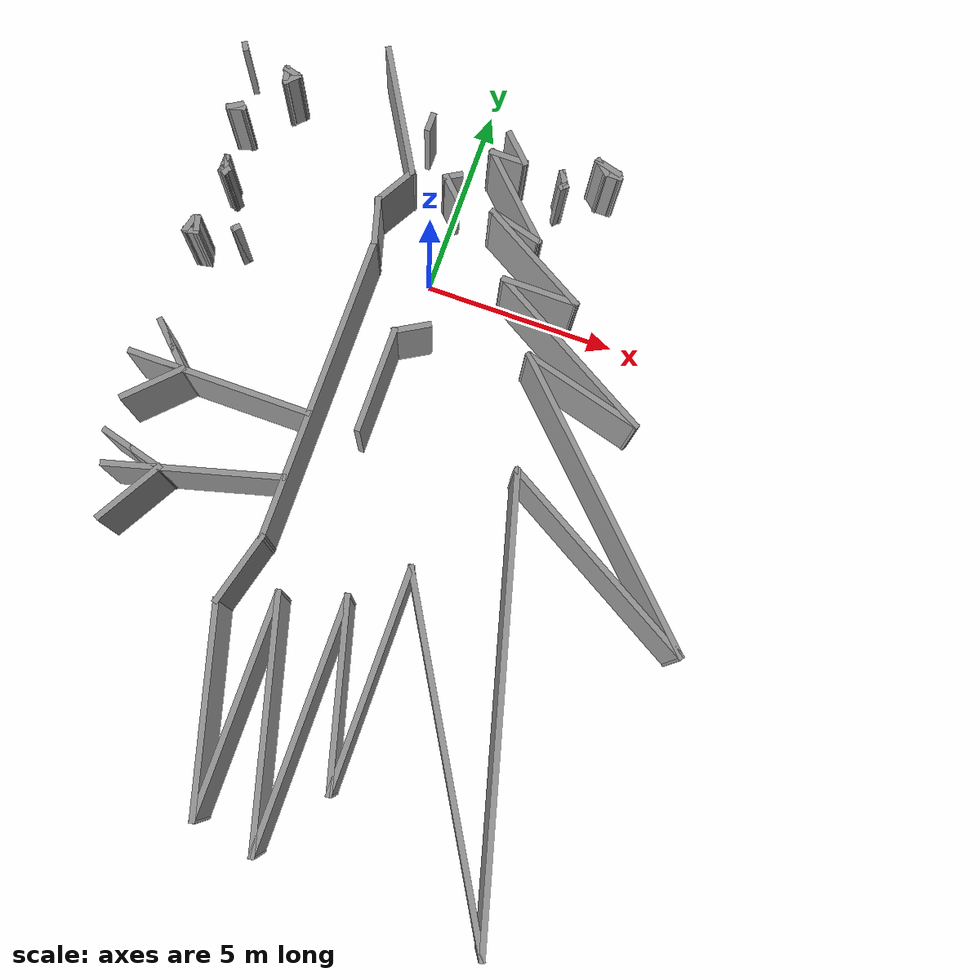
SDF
<sdf version="1.6">
 <model name="phenix">
  <pose>1.26432 -3.5 0 0 -0 4.71</pose>
  <link name="Wall_103">
   <collision name="Wall_103_Collision">
    <geometry><box><size>0.75 0.15 2.5</size></box></geometry>
    <pose>0 0 1.25 0 -0 0</pose>
   </collision>
   <visual name="Wall_103_Visual">
    <pose>0 0 1.25 0 -0 0</pose>
    <geometry><box><size>0.75 0.15 2.5</size></box></geometry>
    <material>
     <script><uri>file://media/materials/scripts/gazebo.material</uri><name>Gazebo/Grey</name></script>
     <ambient>1 1 1 1</ambient>
    </material>
    <meta><layer>0</layer></meta>
   </visual>
   <pose>-7.19585 2.15812 0 0 -0 1.309</pose>
  </link>
  <link name="Wall_104">
   <collision name="Wall_104_Collision">
    <geometry><box><size>0.25 0.15 2.5</size></box></geometry>
    <pose>0 0 1.25 0 -0 0</pose>
   </collision>
   <visual name="Wall_104_Visual">
    <pose>0 0 1.25 0 -0 0</pose>
    <geometry><box><size>0.25 0.15 2.5</size></box></geometry>
    <material>
     <script><uri>file://media/materials/scripts/gazebo.material</uri><name>Gazebo/Grey</name></script>
     <ambient>1 1 1 1</ambient>
    </material>
    <meta><layer>0</layer></meta>
   </visual>
   <pose>-7.0749 2.4729 0 0 -0 0.523599</pose>
  </link>
  <link name="Wall_105">
   <collision name="Wall_105_Collision">
    <geometry><box><size>0.5 0.15 2.5</size></box></geometry>
    <pose>0 0 1.25 0 -0 0</pose>
   </collision>
   <visual name="Wall_105_Visual">
    <pose>0 0 1.25 0 -0 0</pose>
    <geometry><box><size>0.5 0.15 2.5</size></box></geometry>
    <material>
     <script><uri>file://media/materials/scripts/gazebo.material</uri><name>Gazebo/Grey</name></script>
     <ambient>1 1 1 1</ambient>
    </material>
    <meta><layer>0</layer></meta>
   </visual>
   <pose>-7.0316 2.3229 0 0 -0 -1.5708</pose>
  </link>
  <link name="Wall_106">
   <collision name="Wall_106_Collision">
    <geometry><box><size>0.519681 0.15 2.5</size></box></geometry>
    <pose>0 0 1.25 0 -0 0</pose>
   </collision>
   <visual name="Wall_106_Visual">
    <pose>0 0 1.25 0 -0 0</pose>
    <geometry><box><size>0.519681 0.15 2.5</size></box></geometry>
    <material>
     <script><uri>file://media/materials/scripts/gazebo.material</uri><name>Gazebo/Grey</name></script>
     <ambient>1 1 1 1</ambient>
    </material>
    <meta><layer>0</layer></meta>
   </visual>
   <pose>-7.15255 2.00812 0 0 -0 -2.2841</pose>
  </link>
  <link name="Wall_108">
   <collision name="Wall_108_Collision">
    <geometry><box><size>0.5 0.15 2.5</size></box></geometry>
    <pose>0 0 1.25 0 -0 0</pose>
   </collision>
   <visual name="Wall_108_Visual">
    <pose>0 0 1.25 0 -0 0</pose>
    <geometry><box><size>0.5 0.15 2.5</size></box></geometry>
    <material>
     <script><uri>file://media/materials/scripts/gazebo.material</uri><name>Gazebo/Grey</name></script>
     <ambient>1 1 1 1</ambient>
    </material>
    <meta><layer>0</layer></meta>
   </visual>
   <pose>-6.52682 1.20202 0 0 -0 0.523599</pose>
  </link>
  <link name="Wall_109">
   <collision name="Wall_109_Collision">
    <geometry><box><size>0.25 0.15 2.5</size></box></geometry>
    <pose>0 0 1.25 0 -0 0</pose>
   </collision>
   <visual name="Wall_109_Visual">
    <pose>0 0 1.25 0 -0 0</pose>
    <geometry><box><size>0.25 0.15 2.5</size></box></geometry>
    <material>
     <script><uri>file://media/materials/scripts/gazebo.material</uri><name>Gazebo/Grey</name></script>
     <ambient>1 1 1 1</ambient>
    </material>
    <meta><layer>0</layer></meta>
   </visual>
   <pose>-6.33991 1.25416 0 0 -0 -0.785398</pose>
  </link>
  <link name="Wall_11">
   <collision name="Wall_11_Collision">
    <geometry><box><size>0.5 0.15 2.5</size></box></geometry>
    <pose>0 0 1.25 0 -0 0</pose>
   </collision>
   <visual name="Wall_11_Visual">
    <pose>0 0 1.25 0 -0 0</pose>
    <geometry><box><size>0.5 0.15 2.5</size></box></geometry>
    <material>
     <script><uri>file://media/materials/scripts/gazebo.material</uri><name>Gazebo/Grey</name></script>
     <ambient>1 1 1 1</ambient>
    </material>
    <meta><layer>0</layer></meta>
   </visual>
   <pose>-6.84222 -2.44694 0 0 -0 0</pose>
  </link>
  <link name="Wall_110">
   <collision name="Wall_110_Collision">
    <geometry><box><size>0.25 0.15 2.5</size></box></geometry>
    <pose>0 0 1.25 0 -0 0</pose>
   </collision>
   <visual name="Wall_110_Visual">
    <pose>0 0 1.25 0 -0 0</pose>
    <geometry><box><size>0.25 0.15 2.5</size></box></geometry>
    <material>
     <script><uri>file://media/materials/scripts/gazebo.material</uri><name>Gazebo/Grey</name></script>
     <ambient>1 1 1 1</ambient>
    </material>
    <meta><layer>0</layer></meta>
   </visual>
   <pose>-6.33991 1.25416 0 0 -0 2.35619</pose>
  </link>
  <link name="Wall_111">
   <collision name="Wall_111_Collision">
    <geometry><box><size>0.5 0.15 2.5</size></box></geometry>
    <pose>0 0 1.25 0 -0 0</pose>
   </collision>
   <visual name="Wall_111_Visual">
    <pose>0 0 1.25 0 -0 0</pose>
    <geometry><box><size>0.5 0.15 2.5</size></box></geometry>
    <material>
     <script><uri>file://media/materials/scripts/gazebo.material</uri><name>Gazebo/Grey</name></script>
     <ambient>1 1 1 1</ambient>
    </material>
    <meta><layer>0</layer></meta>
   </visual>
   <pose>-6.52682 1.20202 0 0 -0 -2.61799</pose>
  </link>
  <link name="Wall_112">
   <collision name="Wall_112_Collision">
    <geometry><box><size>0.5 0.15 2.5</size></box></geometry>
    <pose>0 0 1.25 0 -0 0</pose>
   </collision>
   <visual name="Wall_112_Visual">
    <pose>0 0 1.25 0 -0 0</pose>
    <geometry><box><size>0.5 0.15 2.5</size></box></geometry>
    <material>
     <script><uri>file://media/materials/scripts/gazebo.material</uri><name>Gazebo/Grey</name></script>
     <ambient>1 1 1 1</ambient>
    </material>
    <meta><layer>0</layer></meta>
   </visual>
   <pose>-6.52682 1.20202 0 0 -0 0.523599</pose>
  </link>
  <link name="Wall_13">
   <collision name="Wall_13_Collision">
    <geometry><box><size>3.5 0.15 2.5</size></box></geometry>
    <pose>0 0 1.25 0 -0 0</pose>
   </collision>
   <visual name="Wall_13_Visual">
    <pose>0 0 1.25 0 -0 0</pose>
    <geometry><box><size>3.5 0.15 2.5</size></box></geometry>
    <material>
     <script><uri>file://media/materials/scripts/gazebo.material</uri><name>Gazebo/Grey</name></script>
     <ambient>1 1 1 1</ambient>
    </material>
    <meta><layer>0</layer></meta>
   </visual>
   <pose>-6.87833 -3.27114 0 0 -0 0.523599</pose>
  </link>
  <link name="Wall_132">
   <collision name="Wall_132_Collision">
    <geometry><box><size>0.25 0.15 2.5</size></box></geometry>
    <pose>0 0 1.25 0 -0 0</pose>
   </collision>
   <visual name="Wall_132_Visual">
    <pose>0 0 1.25 0 -0 0</pose>
    <geometry><box><size>0.25 0.15 2.5</size></box></geometry>
    <material>
     <script><uri>file://media/materials/scripts/gazebo.material</uri><name>Gazebo/Grey</name></script>
     <ambient>1 1 1 1</ambient>
    </material>
    <meta><layer>0</layer></meta>
   </visual>
   <pose>-7.17556 -7.56886 0 0 -0 0.523599</pose>
  </link>
  <link name="Wall_137">
   <collision name="Wall_137_Collision">
    <geometry><box><size>0.5 0.15 2.5</size></box></geometry>
    <pose>0 0 1.25 0 -0 0</pose>
   </collision>
   <visual name="Wall_137_Visual">
    <pose>0 0 1.25 0 -0 0</pose>
    <geometry><box><size>0.5 0.15 2.5</size></box></geometry>
    <material>
     <script><uri>file://media/materials/scripts/gazebo.material</uri><name>Gazebo/Grey</name></script>
     <ambient>1 1 1 1</ambient>
    </material>
    <meta><layer>0</layer></meta>
   </visual>
   <pose>-6.75207 -6.13956 0 0 -0 -0.785398</pose>
  </link>
  <link name="Wall_138">
   <collision name="Wall_138_Collision">
    <geometry><box><size>0.5 0.15 2.5</size></box></geometry>
    <pose>0 0 1.25 0 -0 0</pose>
   </collision>
   <visual name="Wall_138_Visual">
    <pose>0 0 1.25 0 -0 0</pose>
    <geometry><box><size>0.5 0.15 2.5</size></box></geometry>
    <material>
     <script><uri>file://media/materials/scripts/gazebo.material</uri><name>Gazebo/Grey</name></script>
     <ambient>1 1 1 1</ambient>
    </material>
    <meta><layer>0</layer></meta>
   </visual>
   <pose>-6.79736 -6.3086 0 0 -0 -2.87979</pose>
  </link>
  <link name="Wall_139">
   <collision name="Wall_139_Collision">
    <geometry><box><size>0.5 0.15 2.5</size></box></geometry>
    <pose>0 0 1.25 0 -0 0</pose>
   </collision>
   <visual name="Wall_139_Visual">
    <pose>0 0 1.25 0 -0 0</pose>
    <geometry><box><size>0.5 0.15 2.5</size></box></geometry>
    <material>
     <script><uri>file://media/materials/scripts/gazebo.material</uri><name>Gazebo/Grey</name></script>
     <ambient>1 1 1 1</ambient>
    </material>
    <meta><layer>0</layer></meta>
   </visual>
   <pose>-6.92111 -6.18485 0 0 -0 1.309</pose>
  </link>
  <link name="Wall_14">
   <collision name="Wall_14_Collision">
    <geometry><box><size>1.25 0.15 2.5</size></box></geometry>
    <pose>0 0 1.25 0 -0 0</pose>
   </collision>
   <visual name="Wall_14_Visual">
    <pose>0 0 1.25 0 -0 0</pose>
    <geometry><box><size>1.25 0.15 2.5</size></box></geometry>
    <material>
     <script><uri>file://media/materials/scripts/gazebo.material</uri><name>Gazebo/Grey</name></script>
     <ambient>1 1 1 1</ambient>
    </material>
    <meta><layer>0</layer></meta>
   </visual>
   <pose>-4.95142 -2.70864 0 0 -0 -0.523599</pose>
  </link>
  <link name="Wall_141">
   <collision name="Wall_141_Collision">
    <geometry><box><size>0.25 0.15 2.5</size></box></geometry>
    <pose>0 0 1.25 0 -0 0</pose>
   </collision>
   <visual name="Wall_141_Visual">
    <pose>0 0 1.25 0 -0 0</pose>
    <geometry><box><size>0.25 0.15 2.5</size></box></geometry>
    <material>
     <script><uri>file://media/materials/scripts/gazebo.material</uri><name>Gazebo/Grey</name></script>
     <ambient>1 1 1 1</ambient>
    </material>
    <meta><layer>0</layer></meta>
   </visual>
   <pose>-5.64188 -7.06318 0 0 -0 -2.35619</pose>
  </link>
  <link name="Wall_142">
   <collision name="Wall_142_Collision">
    <geometry><box><size>0.25 0.15 2.5</size></box></geometry>
    <pose>0 0 1.25 0 -0 0</pose>
   </collision>
   <visual name="Wall_142_Visual">
    <pose>0 0 1.25 0 -0 0</pose>
    <geometry><box><size>0.25 0.15 2.5</size></box></geometry>
    <material>
     <script><uri>file://media/materials/scripts/gazebo.material</uri><name>Gazebo/Grey</name></script>
     <ambient>1 1 1 1</ambient>
    </material>
    <meta><layer>0</layer></meta>
   </visual>
   <pose>-5.64188 -7.06318 0 0 -0 0.785398</pose>
  </link>
  <link name="Wall_143">
   <collision name="Wall_143_Collision">
    <geometry><box><size>0.5 0.15 2.5</size></box></geometry>
    <pose>0 0 1.25 0 -0 0</pose>
   </collision>
   <visual name="Wall_143_Visual">
    <pose>0 0 1.25 0 -0 0</pose>
    <geometry><box><size>0.5 0.15 2.5</size></box></geometry>
    <material>
     <script><uri>file://media/materials/scripts/gazebo.material</uri><name>Gazebo/Grey</name></script>
     <ambient>1 1 1 1</ambient>
    </material>
    <meta><layer>0</layer></meta>
   </visual>
   <pose>-5.56123 -7.19686 0 0 -0 -1.309</pose>
  </link>
  <link name="Wall_144">
   <collision name="Wall_144_Collision">
    <geometry><box><size>0.46225 0.15 2.5</size></box></geometry>
    <pose>0 0 1.25 0 -0 0</pose>
   </collision>
   <visual name="Wall_144_Visual">
    <pose>0 0 1.25 0 -0 0</pose>
    <geometry><box><size>0.46225 0.15 2.5</size></box></geometry>
    <material>
     <script><uri>file://media/materials/scripts/gazebo.material</uri><name>Gazebo/Grey</name></script>
     <ambient>1 1 1 1</ambient>
    </material>
    <meta><layer>0</layer></meta>
   </visual>
   <pose>-5.59658 -7.23221 0 0 -0 2.11363</pose>
  </link>
  <link name="Wall_146">
   <collision name="Wall_146_Collision">
    <geometry><box><size>0.25 0.15 2.5</size></box></geometry>
    <pose>0 0 1.25 0 -0 0</pose>
   </collision>
   <visual name="Wall_146_Visual">
    <pose>0 0 1.25 0 -0 0</pose>
    <geometry><box><size>0.25 0.15 2.5</size></box></geometry>
    <material>
     <script><uri>file://media/materials/scripts/gazebo.material</uri><name>Gazebo/Grey</name></script>
     <ambient>1 1 1 1</ambient>
    </material>
    <meta><layer>0</layer></meta>
   </visual>
   <pose>-3.89942 -6.81269 0 0 -0 -0.523599</pose>
  </link>
  <link name="Wall_147">
   <collision name="Wall_147_Collision">
    <geometry><box><size>0.25 0.15 2.5</size></box></geometry>
    <pose>0 0 1.25 0 -0 0</pose>
   </collision>
   <visual name="Wall_147_Visual">
    <pose>0 0 1.25 0 -0 0</pose>
    <geometry><box><size>0.25 0.15 2.5</size></box></geometry>
    <material>
     <script><uri>file://media/materials/scripts/gazebo.material</uri><name>Gazebo/Grey</name></script>
     <ambient>1 1 1 1</ambient>
    </material>
    <meta><layer>0</layer></meta>
   </visual>
   <pose>-3.86906 -6.88598 0 0 -0 -1.8326</pose>
  </link>
  <link name="Wall_148">
   <collision name="Wall_148_Collision">
    <geometry><box><size>0.5 0.15 2.5</size></box></geometry>
    <pose>0 0 1.25 0 -0 0</pose>
   </collision>
   <visual name="Wall_148_Visual">
    <pose>0 0 1.25 0 -0 0</pose>
    <geometry><box><size>0.5 0.15 2.5</size></box></geometry>
    <material>
     <script><uri>file://media/materials/scripts/gazebo.material</uri><name>Gazebo/Grey</name></script>
     <ambient>1 1 1 1</ambient>
    </material>
    <meta><layer>0</layer></meta>
   </visual>
   <pose>-4.057 -6.93428 0 0 -0 3.14159</pose>
  </link>
  <link name="Wall_149">
   <collision name="Wall_149_Collision">
    <geometry><box><size>0.5 0.15 2.5</size></box></geometry>
    <pose>0 0 1.25 0 -0 0</pose>
   </collision>
   <visual name="Wall_149_Visual">
    <pose>0 0 1.25 0 -0 0</pose>
    <geometry><box><size>0.5 0.15 2.5</size></box></geometry>
    <material>
     <script><uri>file://media/materials/scripts/gazebo.material</uri><name>Gazebo/Grey</name></script>
     <ambient>1 1 1 1</ambient>
    </material>
    <meta><layer>0</layer></meta>
   </visual>
   <pose>-4.057 -6.93428 0 0 -0 0</pose>
  </link>
  <link name="Wall_15">
   <collision name="Wall_15_Collision">
    <geometry><box><size>1.25 0.15 2.5</size></box></geometry>
    <pose>0 0 1.25 0 -0 0</pose>
   </collision>
   <visual name="Wall_15_Visual">
    <pose>0 0 1.25 0 -0 0</pose>
    <geometry><box><size>1.25 0.15 2.5</size></box></geometry>
    <material>
     <script><uri>file://media/materials/scripts/gazebo.material</uri><name>Gazebo/Grey</name></script>
     <ambient>1 1 1 1</ambient>
    </material>
    <meta><layer>0</layer></meta>
   </visual>
   <pose>-3.94385 -2.84129 0 0 -0 0.261799</pose>
  </link>
  <link name="Wall_150">
   <collision name="Wall_150_Collision">
    <geometry><box><size>0.5 0.15 2.5</size></box></geometry>
    <pose>0 0 1.25 0 -0 0</pose>
   </collision>
   <visual name="Wall_150_Visual">
    <pose>0 0 1.25 0 -0 0</pose>
    <geometry><box><size>0.5 0.15 2.5</size></box></geometry>
    <material>
     <script><uri>file://media/materials/scripts/gazebo.material</uri><name>Gazebo/Grey</name></script>
     <ambient>1 1 1 1</ambient>
    </material>
    <meta><layer>0</layer></meta>
   </visual>
   <pose>-4.057 -6.93428 0 0 -0 3.14159</pose>
  </link>
  <link name="Wall_151">
   <collision name="Wall_151_Collision">
    <geometry><box><size>0.15 0.15 2.5</size></box></geometry>
    <pose>0 0 1.25 0 -0 0</pose>
   </collision>
   <visual name="Wall_151_Visual">
    <pose>0 0 1.25 0 -0 0</pose>
    <geometry><box><size>0.15 0.15 2.5</size></box></geometry>
    <material>
     <script><uri>file://media/materials/scripts/gazebo.material</uri><name>Gazebo/Grey</name></script>
     <ambient>1 1 1 1</ambient>
    </material>
    <meta><layer>0</layer></meta>
   </visual>
   <pose>-4.232 -6.93428 0 0 -0 0</pose>
  </link>
  <link name="Wall_152">
   <collision name="Wall_152_Collision">
    <geometry><box><size>0.538094 0.15 2.5</size></box></geometry>
    <pose>0 0 1.25 0 -0 0</pose>
   </collision>
   <visual name="Wall_152_Visual">
    <pose>0 0 1.25 0 -0 0</pose>
    <geometry><box><size>0.538094 0.15 2.5</size></box></geometry>
    <material>
     <script><uri>file://media/materials/scripts/gazebo.material</uri><name>Gazebo/Grey</name></script>
     <ambient>1 1 1 1</ambient>
    </material>
    <meta><layer>0</layer></meta>
   </visual>
   <pose>-4.04406 -6.88598 0 0 -0 0.251533</pose>
  </link>
  <link name="Wall_156">
   <collision name="Wall_156_Collision">
    <geometry><box><size>0.25 0.15 2.5</size></box></geometry>
    <pose>0 0 1.25 0 -0 0</pose>
   </collision>
   <visual name="Wall_156_Visual">
    <pose>0 0 1.25 0 -0 0</pose>
    <geometry><box><size>0.25 0.15 2.5</size></box></geometry>
    <material>
     <script><uri>file://media/materials/scripts/gazebo.material</uri><name>Gazebo/Grey</name></script>
     <ambient>1 1 1 1</ambient>
    </material>
    <meta><layer>0</layer></meta>
   </visual>
   <pose>-2.57991 -6.05393 0 0 -0 -0.785398</pose>
  </link>
  <link name="Wall_157">
   <collision name="Wall_157_Collision">
    <geometry><box><size>0.25 0.15 2.5</size></box></geometry>
    <pose>0 0 1.25 0 -0 0</pose>
   </collision>
   <visual name="Wall_157_Visual">
    <pose>0 0 1.25 0 -0 0</pose>
    <geometry><box><size>0.25 0.15 2.5</size></box></geometry>
    <material>
     <script><uri>file://media/materials/scripts/gazebo.material</uri><name>Gazebo/Grey</name></script>
     <ambient>1 1 1 1</ambient>
    </material>
    <meta><layer>0</layer></meta>
   </visual>
   <pose>-2.57991 -6.05393 0 0 -0 2.35619</pose>
  </link>
  <link name="Wall_158">
   <collision name="Wall_158_Collision">
    <geometry><box><size>0.25 0.15 2.5</size></box></geometry>
    <pose>0 0 1.25 0 -0 0</pose>
   </collision>
   <visual name="Wall_158_Visual">
    <pose>0 0 1.25 0 -0 0</pose>
    <geometry><box><size>0.25 0.15 2.5</size></box></geometry>
    <material>
     <script><uri>file://media/materials/scripts/gazebo.material</uri><name>Gazebo/Grey</name></script>
     <ambient>1 1 1 1</ambient>
    </material>
    <meta><layer>0</layer></meta>
   </visual>
   <pose>-2.57991 -6.05393 0 0 -0 -0.785398</pose>
  </link>
  <link name="Wall_16">
   <collision name="Wall_16_Collision">
    <geometry><box><size>8 0.15 2.5</size></box></geometry>
    <pose>0 0 1.25 0 -0 0</pose>
   </collision>
   <visual name="Wall_16_Visual">
    <pose>0 0 1.25 0 -0 0</pose>
    <geometry><box><size>8 0.15 2.5</size></box></geometry>
    <material>
     <script><uri>file://media/materials/scripts/gazebo.material</uri><name>Gazebo/Grey</name></script>
     <ambient>1 1 1 1</ambient>
    </material>
    <meta><layer>0</layer></meta>
   </visual>
   <pose>0.512411 -2.69894 0 0 -0 0</pose>
  </link>
  <link name="Wall_160">
   <collision name="Wall_160_Collision">
    <geometry><box><size>0.5 0.15 2.5</size></box></geometry>
    <pose>0 0 1.25 0 -0 0</pose>
   </collision>
   <visual name="Wall_160_Visual">
    <pose>0 0 1.25 0 -0 0</pose>
    <geometry><box><size>0.5 0.15 2.5</size></box></geometry>
    <material>
     <script><uri>file://media/materials/scripts/gazebo.material</uri><name>Gazebo/Grey</name></script>
     <ambient>1 1 1 1</ambient>
    </material>
    <meta><layer>0</layer></meta>
   </visual>
   <pose>-2.3343 -6.99387 0 0 -0 -2.87979</pose>
  </link>
  <link name="Wall_161">
   <collision name="Wall_161_Collision">
    <geometry><box><size>0.25 0.15 2.5</size></box></geometry>
    <pose>0 0 1.25 0 -0 0</pose>
   </collision>
   <visual name="Wall_161_Visual">
    <pose>0 0 1.25 0 -0 0</pose>
    <geometry><box><size>0.25 0.15 2.5</size></box></geometry>
    <material>
     <script><uri>file://media/materials/scripts/gazebo.material</uri><name>Gazebo/Grey</name></script>
     <ambient>1 1 1 1</ambient>
    </material>
    <meta><layer>0</layer></meta>
   </visual>
   <pose>-2.47834 -7.08246 0 0 -0 -1.0472</pose>
  </link>
  <link name="Wall_162">
   <collision name="Wall_162_Collision">
    <geometry><box><size>0.5 0.15 2.5</size></box></geometry>
    <pose>0 0 1.25 0 -0 0</pose>
   </collision>
   <visual name="Wall_162_Visual">
    <pose>0 0 1.25 0 -0 0</pose>
    <geometry><box><size>0.5 0.15 2.5</size></box></geometry>
    <material>
     <script><uri>file://media/materials/scripts/gazebo.material</uri><name>Gazebo/Grey</name></script>
     <ambient>1 1 1 1</ambient>
    </material>
    <meta><layer>0</layer></meta>
   </visual>
   <pose>-2.2843 -7.17106 0 0 -0 -0.261799</pose>
  </link>
  <link name="Wall_163">
   <collision name="Wall_163_Collision">
    <geometry><box><size>0.15 0.15 2.5</size></box></geometry>
    <pose>0 0 1.25 0 -0 0</pose>
   </collision>
   <visual name="Wall_163_Visual">
    <pose>0 0 1.25 0 -0 0</pose>
    <geometry><box><size>0.15 0.15 2.5</size></box></geometry>
    <material>
     <script><uri>file://media/materials/scripts/gazebo.material</uri><name>Gazebo/Grey</name></script>
     <ambient>1 1 1 1</ambient>
    </material>
    <meta><layer>0</layer></meta>
   </visual>
   <pose>-2.11526 -7.21635 0 0 -0 0</pose>
  </link>
  <link name="Wall_164">
   <collision name="Wall_164_Collision">
    <geometry><box><size>0.422404 0.15 2.5</size></box></geometry>
    <pose>0 0 1.25 0 -0 0</pose>
   </collision>
   <visual name="Wall_164_Visual">
    <pose>0 0 1.25 0 -0 0</pose>
    <geometry><box><size>0.422404 0.15 2.5</size></box></geometry>
    <material>
     <script><uri>file://media/materials/scripts/gazebo.material</uri><name>Gazebo/Grey</name></script>
     <ambient>1 1 1 1</ambient>
    </material>
    <meta><layer>0</layer></meta>
   </visual>
   <pose>-2.14026 -7.08246 0 0 -0 1.75539</pose>
  </link>
  <link name="Wall_17">
   <collision name="Wall_17_Collision">
    <geometry><box><size>2 0.15 2.5</size></box></geometry>
    <pose>0 0 1.25 0 -0 0</pose>
   </collision>
   <visual name="Wall_17_Visual">
    <pose>0 0 1.25 0 -0 0</pose>
    <geometry><box><size>2 0.15 2.5</size></box></geometry>
    <material>
     <script><uri>file://media/materials/scripts/gazebo.material</uri><name>Gazebo/Grey</name></script>
     <ambient>1 1 1 1</ambient>
    </material>
    <meta><layer>0</layer></meta>
   </visual>
   <pose>5.33089 -2.93834 0 0 -0 -0.261799</pose>
  </link>
  <link name="Wall_18">
   <collision name="Wall_18_Collision">
    <geometry><box><size>5.25 0.15 2.5</size></box></geometry>
    <pose>0 0 1.25 0 -0 0</pose>
   </collision>
   <visual name="Wall_18_Visual">
    <pose>0 0 1.25 0 -0 0</pose>
    <geometry><box><size>5.25 0.15 2.5</size></box></geometry>
    <material>
     <script><uri>file://media/materials/scripts/gazebo.material</uri><name>Gazebo/Grey</name></script>
     <ambient>1 1 1 1</ambient>
    </material>
    <meta><layer>0</layer></meta>
   </visual>
   <pose>8.68749 -2.51776 0 0 -0 0.261799</pose>
  </link>
  <link name="Wall_19">
   <collision name="Wall_19_Collision">
    <geometry><box><size>5.75 0.15 2.5</size></box></geometry>
    <pose>0 0 1.25 0 -0 0</pose>
   </collision>
   <visual name="Wall_19_Visual">
    <pose>0 0 1.25 0 -0 0</pose>
    <geometry><box><size>5.75 0.15 2.5</size></box></geometry>
    <material>
     <script><uri>file://media/materials/scripts/gazebo.material</uri><name>Gazebo/Grey</name></script>
     <ambient>1 1 1 1</ambient>
    </material>
    <meta><layer>0</layer></meta>
   </visual>
   <pose>8.3506 -1.85777 0 0 -0 3.14159</pose>
  </link>
  <link name="Wall_20">
   <collision name="Wall_20_Collision">
    <geometry><box><size>6.25 0.15 2.5</size></box></geometry>
    <pose>0 0 1.25 0 -0 0</pose>
   </collision>
   <visual name="Wall_20_Visual">
    <pose>0 0 1.25 0 -0 0</pose>
    <geometry><box><size>6.25 0.15 2.5</size></box></geometry>
    <material>
     <script><uri>file://media/materials/scripts/gazebo.material</uri><name>Gazebo/Grey</name></script>
     <ambient>1 1 1 1</ambient>
    </material>
    <meta><layer>0</layer></meta>
   </visual>
   <pose>8.49667 -1.06838 0 0 -0 0.261799</pose>
  </link>
  <link name="Wall_21">
   <collision name="Wall_21_Collision">
    <geometry><box><size>6.5 0.15 2.5</size></box></geometry>
    <pose>0 0 1.25 0 -0 0</pose>
   </collision>
   <visual name="Wall_21_Visual">
    <pose>0 0 1.25 0 -0 0</pose>
    <geometry><box><size>6.5 0.15 2.5</size></box></geometry>
    <material>
     <script><uri>file://media/materials/scripts/gazebo.material</uri><name>Gazebo/Grey</name></script>
     <ambient>1 1 1 1</ambient>
    </material>
    <meta><layer>0</layer></meta>
   </visual>
   <pose>8.26774 -0.278978 0 0 -0 3.14159</pose>
  </link>
  <link name="Wall_22">
   <collision name="Wall_22_Collision">
    <geometry><box><size>4.75 0.15 2.5</size></box></geometry>
    <pose>0 0 1.25 0 -0 0</pose>
   </collision>
   <visual name="Wall_22_Visual">
    <pose>0 0 1.25 0 -0 0</pose>
    <geometry><box><size>4.75 0.15 2.5</size></box></geometry>
    <material>
     <script><uri>file://media/materials/scripts/gazebo.material</uri><name>Gazebo/Grey</name></script>
     <ambient>1 1 1 1</ambient>
    </material>
    <meta><layer>0</layer></meta>
   </visual>
   <pose>7.31437 0.316306 0 0 -0 0.261799</pose>
  </link>
  <link name="Wall_23">
   <collision name="Wall_23_Collision">
    <geometry><box><size>5.75 0.15 2.5</size></box></geometry>
    <pose>0 0 1.25 0 -0 0</pose>
   </collision>
   <visual name="Wall_23_Visual">
    <pose>0 0 1.25 0 -0 0</pose>
    <geometry><box><size>5.75 0.15 2.5</size></box></geometry>
    <material>
     <script><uri>file://media/materials/scripts/gazebo.material</uri><name>Gazebo/Grey</name></script>
     <ambient>1 1 1 1</ambient>
    </material>
    <meta><layer>0</layer></meta>
   </visual>
   <pose>6.736 0.911589 0 0 -0 3.14159</pose>
  </link>
  <link name="Wall_24">
   <collision name="Wall_24_Collision">
    <geometry><box><size>9.25 0.15 2.5</size></box></geometry>
    <pose>0 0 1.25 0 -0 0</pose>
   </collision>
   <visual name="Wall_24_Visual">
    <pose>0 0 1.25 0 -0 0</pose>
    <geometry><box><size>9.25 0.15 2.5</size></box></geometry>
    <material>
     <script><uri>file://media/materials/scripts/gazebo.material</uri><name>Gazebo/Grey</name></script>
     <ambient>1 1 1 1</ambient>
    </material>
    <meta><layer>0</layer></meta>
   </visual>
   <pose>7.87642 3.18659 0 0 -0 0.523599</pose>
  </link>
  <link name="Wall_25">
   <collision name="Wall_25_Collision">
    <geometry><box><size>11.5 0.15 2.5</size></box></geometry>
    <pose>0 0 1.25 0 -0 0</pose>
   </collision>
   <visual name="Wall_25_Visual">
    <pose>0 0 1.25 0 -0 0</pose>
    <geometry><box><size>11.5 0.15 2.5</size></box></geometry>
    <material>
     <script><uri>file://media/materials/scripts/gazebo.material</uri><name>Gazebo/Grey</name></script>
     <ambient>1 1 1 1</ambient>
    </material>
    <meta><layer>0</layer></meta>
   </visual>
   <pose>6.3352 3.99279 0 0 -0 -2.87979</pose>
  </link>
  <link name="Wall_26">
   <collision name="Wall_26_Collision">
    <geometry><box><size>6 0.15 2.5</size></box></geometry>
    <pose>0 0 1.25 0 -0 0</pose>
   </collision>
   <visual name="Wall_26_Visual">
    <pose>0 0 1.25 0 -0 0</pose>
    <geometry><box><size>6 0.15 2.5</size></box></geometry>
    <material>
     <script><uri>file://media/materials/scripts/gazebo.material</uri><name>Gazebo/Grey</name></script>
     <ambient>1 1 1 1</ambient>
    </material>
    <meta><layer>0</layer></meta>
   </visual>
   <pose>2.31607 5.05712 0 0 -0 1.0472</pose>
  </link>
  <link name="Wall_27">
   <collision name="Wall_27_Collision">
    <geometry><box><size>8.25 0.15 2.5</size></box></geometry>
    <pose>0 0 1.25 0 -0 0</pose>
   </collision>
   <visual name="Wall_27_Visual">
    <pose>0 0 1.25 0 -0 0</pose>
    <geometry><box><size>8.25 0.15 2.5</size></box></geometry>
    <material>
     <script><uri>file://media/materials/scripts/gazebo.material</uri><name>Gazebo/Grey</name></script>
     <ambient>1 1 1 1</ambient>
    </material>
    <meta><layer>0</layer></meta>
   </visual>
   <pose>0.914792 4.72646 0 0 -0 -2.35619</pose>
  </link>
  <link name="Wall_28">
   <collision name="Wall_28_Collision">
    <geometry><box><size>3.25 0.15 2.5</size></box></geometry>
    <pose>0 0 1.25 0 -0 0</pose>
   </collision>
   <visual name="Wall_28_Visual">
    <pose>0 0 1.25 0 -0 0</pose>
    <geometry><box><size>3.25 0.15 2.5</size></box></geometry>
    <material>
     <script><uri>file://media/materials/scripts/gazebo.material</uri><name>Gazebo/Grey</name></script>
     <ambient>1 1 1 1</ambient>
    </material>
    <meta><layer>0</layer></meta>
   </visual>
   <pose>-1.54782 3.35986 0 0 -0 1.309</pose>
  </link>
  <link name="Wall_29">
   <collision name="Wall_29_Collision">
    <geometry><box><size>5 0.15 2.5</size></box></geometry>
    <pose>0 0 1.25 0 -0 0</pose>
   </collision>
   <visual name="Wall_29_Visual">
    <pose>0 0 1.25 0 -0 0</pose>
    <geometry><box><size>5 0.15 2.5</size></box></geometry>
    <material>
     <script><uri>file://media/materials/scripts/gazebo.material</uri><name>Gazebo/Grey</name></script>
     <ambient>1 1 1 1</ambient>
    </material>
    <meta><layer>0</layer></meta>
   </visual>
   <pose>-2.35915 2.75693 0 0 -0 -2.0944</pose>
  </link>
  <link name="Wall_30">
   <collision name="Wall_30_Collision">
    <geometry><box><size>2 0.15 2.5</size></box></geometry>
    <pose>0 0 1.25 0 -0 0</pose>
   </collision>
   <visual name="Wall_30_Visual">
    <pose>0 0 1.25 0 -0 0</pose>
    <geometry><box><size>2 0.15 2.5</size></box></geometry>
    <material>
     <script><uri>file://media/materials/scripts/gazebo.material</uri><name>Gazebo/Grey</name></script>
     <ambient>1 1 1 1</ambient>
    </material>
    <meta><layer>0</layer></meta>
   </visual>
   <pose>-3.57165 1.58182 0 0 -0 1.5708</pose>
  </link>
  <link name="Wall_31">
   <collision name="Wall_31_Collision">
    <geometry><box><size>3.25 0.15 2.5</size></box></geometry>
    <pose>0 0 1.25 0 -0 0</pose>
   </collision>
   <visual name="Wall_31_Visual">
    <pose>0 0 1.25 0 -0 0</pose>
    <geometry><box><size>3.25 0.15 2.5</size></box></geometry>
    <material>
     <script><uri>file://media/materials/scripts/gazebo.material</uri><name>Gazebo/Grey</name></script>
     <ambient>1 1 1 1</ambient>
    </material>
    <meta><layer>0</layer></meta>
   </visual>
   <pose>-4.34665 1.16448 0 0 -0 -2.0944</pose>
  </link>
  <link name="Wall_32">
   <collision name="Wall_32_Collision">
    <geometry><box><size>1.5 0.15 2.5</size></box></geometry>
    <pose>0 0 1.25 0 -0 0</pose>
   </collision>
   <visual name="Wall_32_Visual">
    <pose>0 0 1.25 0 -0 0</pose>
    <geometry><box><size>1.5 0.15 2.5</size></box></geometry>
    <material>
     <script><uri>file://media/materials/scripts/gazebo.material</uri><name>Gazebo/Grey</name></script>
     <ambient>1 1 1 1</ambient>
    </material>
    <meta><layer>0</layer></meta>
   </visual>
   <pose>-4.94695 0.474145 0 0 -0 1.309</pose>
  </link>
  <link name="Wall_33">
   <collision name="Wall_33_Collision">
    <geometry><box><size>2.75 0.15 2.5</size></box></geometry>
    <pose>0 0 1.25 0 -0 0</pose>
   </collision>
   <visual name="Wall_33_Visual">
    <pose>0 0 1.25 0 -0 0</pose>
    <geometry><box><size>2.75 0.15 2.5</size></box></geometry>
    <material>
     <script><uri>file://media/materials/scripts/gazebo.material</uri><name>Gazebo/Grey</name></script>
     <ambient>1 1 1 1</ambient>
    </material>
    <meta><layer>0</layer></meta>
   </visual>
   <pose>-5.69148 0.206906 0 0 -0 -2.35619</pose>
  </link>
  <link name="Wall_34">
   <collision name="Wall_34_Collision">
    <geometry><box><size>1 0.15 2.5</size></box></geometry>
    <pose>0 0 1.25 0 -0 0</pose>
   </collision>
   <visual name="Wall_34_Visual">
    <pose>0 0 1.25 0 -0 0</pose>
    <geometry><box><size>1 0.15 2.5</size></box></geometry>
    <material>
     <script><uri>file://media/materials/scripts/gazebo.material</uri><name>Gazebo/Grey</name></script>
     <ambient>1 1 1 1</ambient>
    </material>
    <meta><layer>0</layer></meta>
   </visual>
   <pose>-6.61072 -0.287333 0 0 -0 1.5708</pose>
  </link>
  <link name="Wall_35">
   <collision name="Wall_35_Collision">
    <geometry><box><size>1 0.15 2.5</size></box></geometry>
    <pose>0 0 1.25 0 -0 0</pose>
   </collision>
   <visual name="Wall_35_Visual">
    <pose>0 0 1.25 0 -0 0</pose>
    <geometry><box><size>1 0.15 2.5</size></box></geometry>
    <material>
     <script><uri>file://media/materials/scripts/gazebo.material</uri><name>Gazebo/Grey</name></script>
     <ambient>1 1 1 1</ambient>
    </material>
    <meta><layer>0</layer></meta>
   </visual>
   <pose>-6.91124 -0.162853 0 0 -0 -2.35619</pose>
  </link>
  <link name="Wall_38">
   <collision name="Wall_38_Collision">
    <geometry><box><size>0.5 0.15 2.5</size></box></geometry>
    <pose>0 0 1.25 0 -0 0</pose>
   </collision>
   <visual name="Wall_38_Visual">
    <pose>0 0 1.25 0 -0 0</pose>
    <geometry><box><size>0.5 0.15 2.5</size></box></geometry>
    <material>
     <script><uri>file://media/materials/scripts/gazebo.material</uri><name>Gazebo/Grey</name></script>
     <ambient>1 1 1 1</ambient>
    </material>
    <meta><layer>0</layer></meta>
   </visual>
   <pose>-5.68427 -1.43232 0 0 -0 -1.0472</pose>
  </link>
  <link name="Wall_39">
   <collision name="Wall_39_Collision">
    <geometry><box><size>0.75 0.15 2.5</size></box></geometry>
    <pose>0 0 1.25 0 -0 0</pose>
   </collision>
   <visual name="Wall_39_Visual">
    <pose>0 0 1.25 0 -0 0</pose>
    <geometry><box><size>0.75 0.15 2.5</size></box></geometry>
    <material>
     <script><uri>file://media/materials/scripts/gazebo.material</uri><name>Gazebo/Grey</name></script>
     <ambient>1 1 1 1</ambient>
    </material>
    <meta><layer>0</layer></meta>
   </visual>
   <pose>-5.38464 -1.37174 0 0 -0 0.785398</pose>
  </link>
  <link name="Wall_41">
   <collision name="Wall_41_Collision">
    <geometry><box><size>1 0.15 2.5</size></box></geometry>
    <pose>0 0 1.25 0 -0 0</pose>
   </collision>
   <visual name="Wall_41_Visual">
    <pose>0 0 1.25 0 -0 0</pose>
    <geometry><box><size>1 0.15 2.5</size></box></geometry>
    <material>
     <script><uri>file://media/materials/scripts/gazebo.material</uri><name>Gazebo/Grey</name></script>
     <ambient>1 1 1 1</ambient>
    </material>
    <meta><layer>0</layer></meta>
   </visual>
   <pose>-1.63488 -1.08172 0 0 -0 -1.0472</pose>
  </link>
  <link name="Wall_42">
   <collision name="Wall_42_Collision">
    <geometry><box><size>2.75 0.15 2.5</size></box></geometry>
    <pose>0 0 1.25 0 -0 0</pose>
   </collision>
   <visual name="Wall_42_Visual">
    <pose>0 0 1.25 0 -0 0</pose>
    <geometry><box><size>2.75 0.15 2.5</size></box></geometry>
    <material>
     <script><uri>file://media/materials/scripts/gazebo.material</uri><name>Gazebo/Grey</name></script>
     <ambient>1 1 1 1</ambient>
    </material>
    <meta><layer>0</layer></meta>
   </visual>
   <pose>-0.122382 -1.44978 0 0 -0 0</pose>
  </link>
  <link name="Wall_44">
   <collision name="Wall_44_Collision">
    <geometry><box><size>4.75 0.15 2.5</size></box></geometry>
    <pose>0 0 1.25 0 -0 0</pose>
   </collision>
   <visual name="Wall_44_Visual">
    <pose>0 0 1.25 0 -0 0</pose>
    <geometry><box><size>4.75 0.15 2.5</size></box></geometry>
    <material>
     <script><uri>file://media/materials/scripts/gazebo.material</uri><name>Gazebo/Grey</name></script>
     <ambient>1 1 1 1</ambient>
    </material>
    <meta><layer>0</layer></meta>
   </visual>
   <pose>1.22627 -5.03582 0 0 -0 -1.5708</pose>
  </link>
  <link name="Wall_45">
   <collision name="Wall_45_Collision">
    <geometry><box><size>1.5 0.15 2.5</size></box></geometry>
    <pose>0 0 1.25 0 -0 0</pose>
   </collision>
   <visual name="Wall_45_Visual">
    <pose>0 0 1.25 0 -0 0</pose>
    <geometry><box><size>1.5 0.15 2.5</size></box></geometry>
    <material>
     <script><uri>file://media/materials/scripts/gazebo.material</uri><name>Gazebo/Grey</name></script>
     <ambient>1 1 1 1</ambient>
    </material>
    <meta><layer>0</layer></meta>
   </visual>
   <pose>1.22627 -6.66082 0 0 -0 1.5708</pose>
  </link>
  <link name="Wall_46">
   <collision name="Wall_46_Collision">
    <geometry><box><size>1.5 0.15 2.5</size></box></geometry>
    <pose>0 0 1.25 0 -0 0</pose>
   </collision>
   <visual name="Wall_46_Visual">
    <pose>0 0 1.25 0 -0 0</pose>
    <geometry><box><size>1.5 0.15 2.5</size></box></geometry>
    <material>
     <script><uri>file://media/materials/scripts/gazebo.material</uri><name>Gazebo/Grey</name></script>
     <ambient>1 1 1 1</ambient>
    </material>
    <meta><layer>0</layer></meta>
   </visual>
   <pose>0.748973 -6.46312 0 0 -0 -2.35619</pose>
  </link>
  <link name="Wall_47">
   <collision name="Wall_47_Collision">
    <geometry><box><size>1.5 0.15 2.5</size></box></geometry>
    <pose>0 0 1.25 0 -0 0</pose>
   </collision>
   <visual name="Wall_47_Visual">
    <pose>0 0 1.25 0 -0 0</pose>
    <geometry><box><size>1.5 0.15 2.5</size></box></geometry>
    <material>
     <script><uri>file://media/materials/scripts/gazebo.material</uri><name>Gazebo/Grey</name></script>
     <ambient>1 1 1 1</ambient>
    </material>
    <meta><layer>0</layer></meta>
   </visual>
   <pose>0.748973 -6.46312 0 0 -0 0.785398</pose>
  </link>
  <link name="Wall_48">
   <collision name="Wall_48_Collision">
    <geometry><box><size>1.75 0.15 2.5</size></box></geometry>
    <pose>0 0 1.25 0 -0 0</pose>
   </collision>
   <visual name="Wall_48_Visual">
    <pose>0 0 1.25 0 -0 0</pose>
    <geometry><box><size>1.75 0.15 2.5</size></box></geometry>
    <material>
     <script><uri>file://media/materials/scripts/gazebo.material</uri><name>Gazebo/Grey</name></script>
     <ambient>1 1 1 1</ambient>
    </material>
    <meta><layer>0</layer></meta>
   </visual>
   <pose>1.79196 -6.55151 0 0 -0 -0.785398</pose>
  </link>
  <link name="Wall_50">
   <collision name="Wall_50_Collision">
    <geometry><box><size>4.5 0.15 2.5</size></box></geometry>
    <pose>0 0 1.25 0 -0 0</pose>
   </collision>
   <visual name="Wall_50_Visual">
    <pose>0 0 1.25 0 -0 0</pose>
    <geometry><box><size>4.5 0.15 2.5</size></box></geometry>
    <material>
     <script><uri>file://media/materials/scripts/gazebo.material</uri><name>Gazebo/Grey</name></script>
     <ambient>1 1 1 1</ambient>
    </material>
    <meta><layer>0</layer></meta>
   </visual>
   <pose>3.4797 -4.83671 0 0 -0 -1.309</pose>
  </link>
  <link name="Wall_51">
   <collision name="Wall_51_Collision">
    <geometry><box><size>1.5 0.15 2.5</size></box></geometry>
    <pose>0 0 1.25 0 -0 0</pose>
   </collision>
   <visual name="Wall_51_Visual">
    <pose>0 0 1.25 0 -0 0</pose>
    <geometry><box><size>1.5 0.15 2.5</size></box></geometry>
    <material>
     <script><uri>file://media/materials/scripts/gazebo.material</uri><name>Gazebo/Grey</name></script>
     <ambient>1 1 1 1</ambient>
    </material>
    <meta><layer>0</layer></meta>
   </visual>
   <pose>3.86793 -6.2856 0 0 -0 1.8326</pose>
  </link>
  <link name="Wall_52">
   <collision name="Wall_52_Collision">
    <geometry><box><size>1.75 0.15 2.5</size></box></geometry>
    <pose>0 0 1.25 0 -0 0</pose>
   </collision>
   <visual name="Wall_52_Visual">
    <pose>0 0 1.25 0 -0 0</pose>
    <geometry><box><size>1.75 0.15 2.5</size></box></geometry>
    <material>
     <script><uri>file://media/materials/scripts/gazebo.material</uri><name>Gazebo/Grey</name></script>
     <ambient>1 1 1 1</ambient>
    </material>
    <meta><layer>0</layer></meta>
   </visual>
   <pose>3.48617 -6.40634 0 0 -0 -1.8326</pose>
  </link>
  <link name="Wall_53">
   <collision name="Wall_53_Collision">
    <geometry><box><size>1.75 0.15 2.5</size></box></geometry>
    <pose>0 0 1.25 0 -0 0</pose>
   </collision>
   <visual name="Wall_53_Visual">
    <pose>0 0 1.25 0 -0 0</pose>
    <geometry><box><size>1.75 0.15 2.5</size></box></geometry>
    <material>
     <script><uri>file://media/materials/scripts/gazebo.material</uri><name>Gazebo/Grey</name></script>
     <ambient>1 1 1 1</ambient>
    </material>
    <meta><layer>0</layer></meta>
   </visual>
   <pose>3.48617 -6.40634 0 0 -0 1.309</pose>
  </link>
  <link name="Wall_54">
   <collision name="Wall_54_Collision">
    <geometry><box><size>2 0.15 2.5</size></box></geometry>
    <pose>0 0 1.25 0 -0 0</pose>
   </collision>
   <visual name="Wall_54_Visual">
    <pose>0 0 1.25 0 -0 0</pose>
    <geometry><box><size>2 0.15 2.5</size></box></geometry>
    <material>
     <script><uri>file://media/materials/scripts/gazebo.material</uri><name>Gazebo/Grey</name></script>
     <ambient>1 1 1 1</ambient>
    </material>
    <meta><layer>0</layer></meta>
   </visual>
   <pose>4.4943 -6.0961 0 0 -0 -0.523599</pose>
  </link>
  <static>1</static>
 </model>
</sdf>
